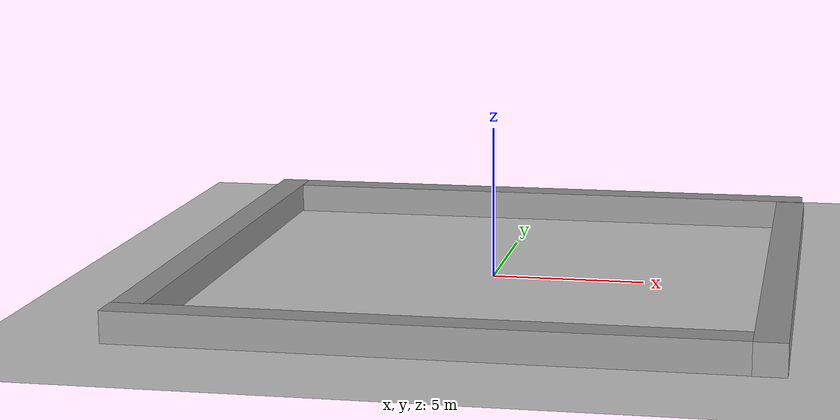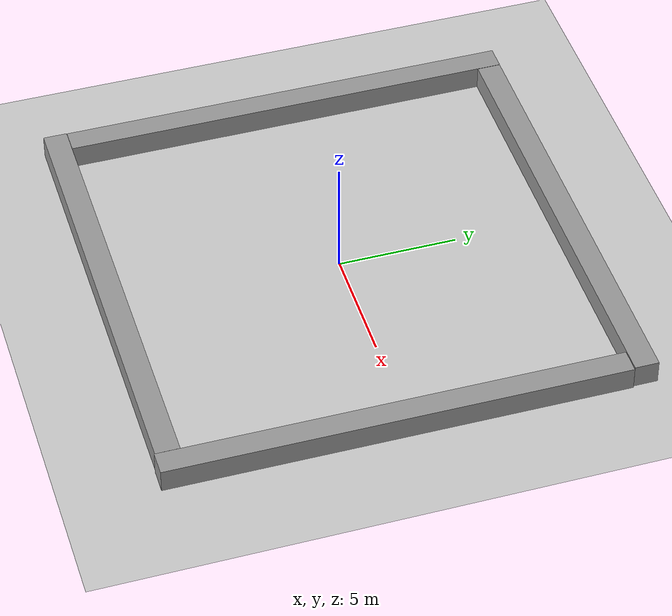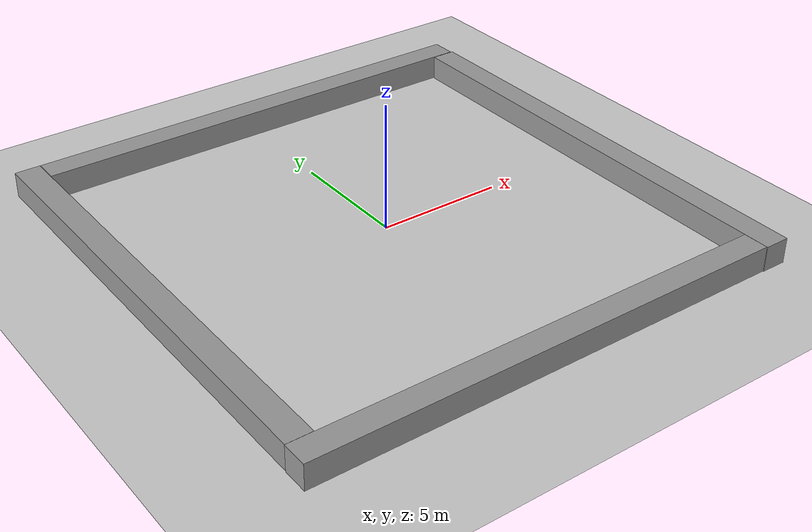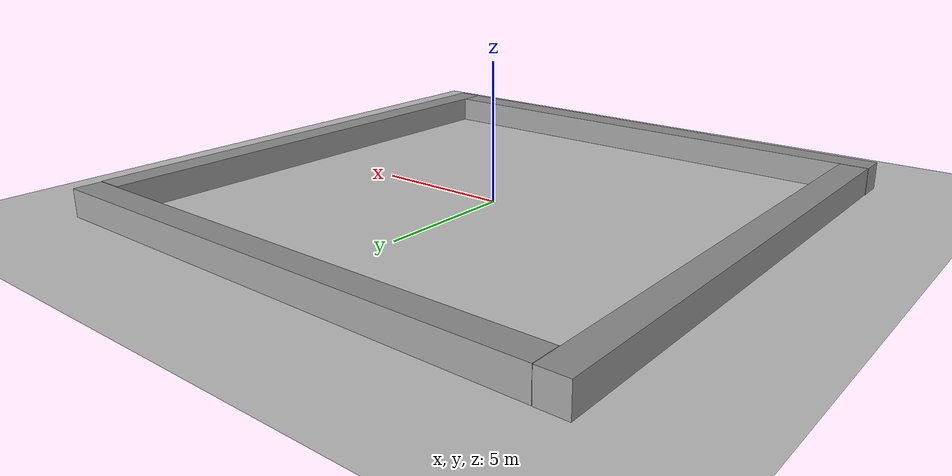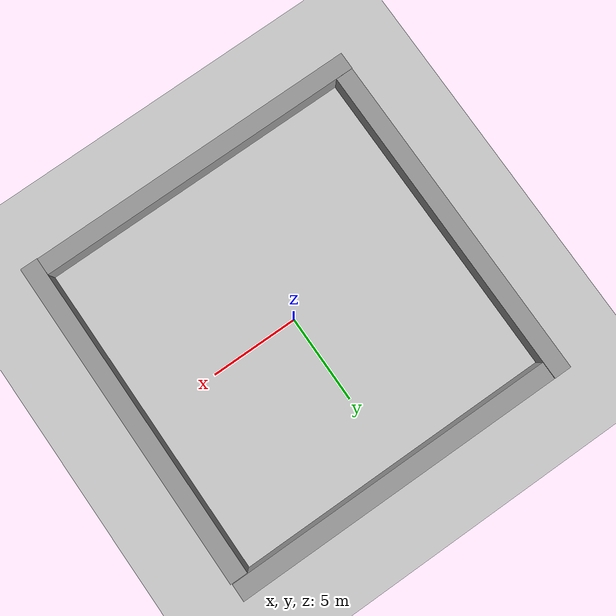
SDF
<sdf version="1.6">
 <world name="default">
  <light name="sun" type="directional">
   <pose>0 0 10 0 -0 0</pose>
   <diffuse>0.8 0.8 0.8 1</diffuse>
   <specular>0.1 0.1 0.1 1</specular>
   <attenuation>
    <range>1000</range>
    <constant>0.9</constant>
    <linear>0.01</linear>
    <quadratic>0.001</quadratic>
   </attenuation>
   <direction>-0.5 0.5 -1</direction>
  </light>
  <model name="ground_plane">
   <static>1</static>
   <link name="link">
    <collision name="collision">
     <geometry><plane><normal>0 0 1</normal><size>100 100</size></plane></geometry>
     <surface><friction><ode><mu>100</mu><mu2>50</mu2></ode></friction></surface>
    </collision>
    <visual name="visual">
     <cast_shadows>0</cast_shadows>
     <geometry><plane><normal>0 0 1</normal><size>100 100</size></plane></geometry>
     <material>
      <script><uri>file://media/materials/scripts/gazebo.material</uri><name>Gazebo/Grey</name></script>
     </material>
    </visual>
   </link>
  </model>
  <gravity>0 0 -9.8</gravity>
  <magnetic_field>6e-06 2.3e-05 -4.2e-05</magnetic_field>
  <atmosphere type="adiabatic"/>
  <physics name="default_physics" default="0" type="ode">
   <max_step_size>0.001</max_step_size>
   <real_time_factor>1</real_time_factor>
   <real_time_update_rate>1000</real_time_update_rate>
  </physics>
  <scene><ambient>0.4 0.4 0.4 1</ambient><background>0.7 0.7 0.7 1</background><shadows>1</shadows></scene>
  <spherical_coordinates>
   <surface_model>EARTH_WGS84</surface_model>
   <latitude_deg>0</latitude_deg>
   <longitude_deg>0</longitude_deg>
   <elevation>0</elevation>
   <heading_deg>0</heading_deg>
  </spherical_coordinates>
  <model name="unit_box_0">
   <pose>-0.538056 -9.5028 0.5 -1e-06 -0 -0.002064</pose>
   <link name="link">
    <inertial>
     <mass>1</mass>
     <inertia><ixx>4</ixx><ixy>0</ixy><ixz>0</ixz><iyy>4</iyy><iyz>0</iyz><izz>4</izz></inertia>
    </inertial>
    <collision name="collision"><geometry><box><size>19 1 1</size></box></geometry></collision>
    <visual name="visual">
     <geometry><box><size>19 1 1</size></box></geometry>
     <material>
      <script><name>Gazebo/Grey</name><uri>file://media/materials/scripts/gazebo.material</uri></script>
     </material>
    </visual>
   </link>
  </model>
  <model name="unit_box_0_clone_0">
   <pose>9.51468 -0.553645 0.498944 -3e-06 0.000111 1.56512</pose>
   <link name="link">
    <inertial>
     <mass>1</mass>
     <inertia><ixx>4</ixx><ixy>0</ixy><ixz>0</ixz><iyy>4</iyy><iyz>0</iyz><izz>4</izz></inertia>
    </inertial>
    <collision name="collision"><geometry><box><size>19 1 1</size></box></geometry></collision>
    <visual name="visual">
     <geometry><box><size>19 1 1</size></box></geometry>
     <material>
      <script><name>Gazebo/Grey</name><uri>file://media/materials/scripts/gazebo.material</uri></script>
     </material>
    </visual>
   </link>
  </model>
  <model name="unit_box_0_clone_0_clone">
   <pose>-9.51892 0.524442 0.498941 -3e-06 -0.000112 1.57078</pose>
   <link name="link">
    <inertial>
     <mass>1</mass>
     <inertia><ixx>4</ixx><ixy>0</ixy><ixz>0</ixz><iyy>4</iyy><iyz>0</iyz><izz>4</izz></inertia>
    </inertial>
    <collision name="collision"><geometry><box><size>19 1 1</size></box></geometry></collision>
    <visual name="visual">
     <geometry><box><size>19 1 1</size></box></geometry>
     <material>
      <script><name>Gazebo/Grey</name><uri>file://media/materials/scripts/gazebo.material</uri></script>
     </material>
    </visual>
   </link>
  </model>
  <model name="unit_box_0_clone">
   <pose>0.496353 9.49722 0.499996 2e-06 0 -0.002044</pose>
   <link name="link">
    <inertial>
     <mass>1</mass>
     <inertia><ixx>4</ixx><ixy>0</ixy><ixz>0</ixz><iyy>4</iyy><iyz>0</iyz><izz>4</izz></inertia>
    </inertial>
    <collision name="collision"><geometry><box><size>19 1 1</size></box></geometry></collision>
    <visual name="visual">
     <geometry><box><size>19 1 1</size></box></geometry>
     <material>
      <script><name>Gazebo/Grey</name><uri>file://media/materials/scripts/gazebo.material</uri></script>
     </material>
    </visual>
   </link>
  </model>
 </world>
</sdf>
